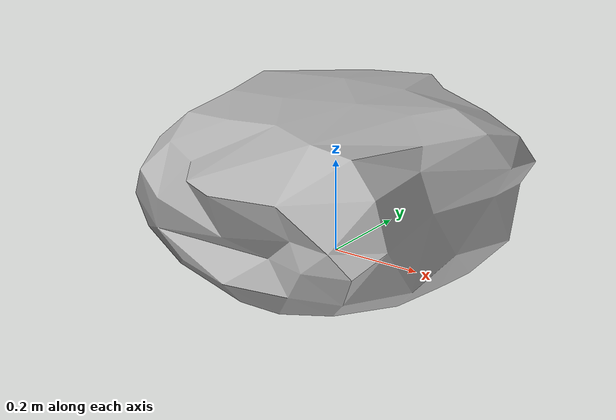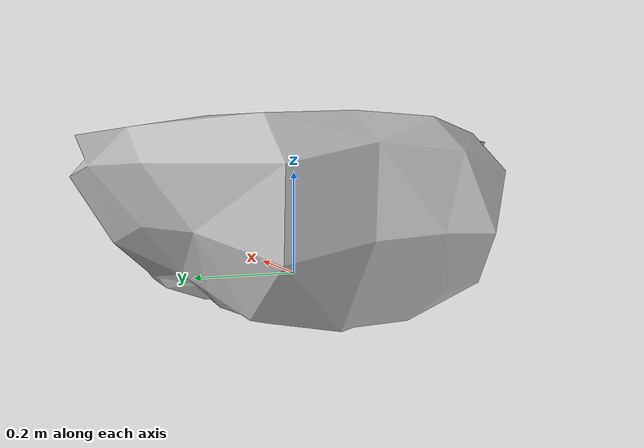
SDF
<?xml version="1.0" ?>
<sdf version="1.5">
  <model name="duck">
     <link name="link">
      <visual name="visual">
        <geometry>

		<mesh>
			<uri>model://duck/duck.dae </uri>
		</mesh>

        </geometry>
      </visual>
    </link>
    <plugin name="my_duck_plugin" filename="libmy_duck_plugin.so">
      <frame_id>/my_duck</frame_id>
      <duckpose_topic>/my_duck/pose</duckpose_topic>
      <duckpose_set_topic>/my_duck/pose/set</duckpose_set_topic>
    </plugin>

  </model>
</sdf>
